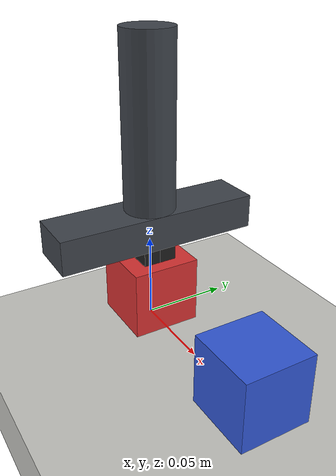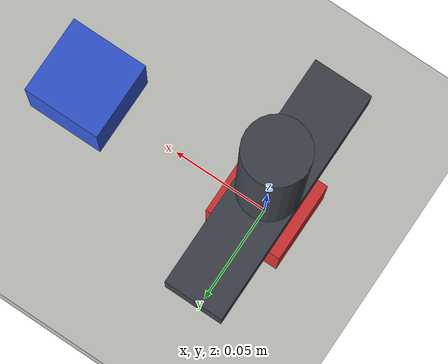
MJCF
<!-- Stack: place the red cube on top of the blue cube and let go. -->
<mujoco model="stack">
  <include file="common.xml"/>
  <worldbody>
    <body name="cube" pos="0 0 0.02">
      <freejoint name="cube"/>
      <geom name="cube" type="box" size="0.02 0.02 0.02" mass="0.08" rgba="0.85 0.2 0.2 1"/>
    </body>
    <body name="base_cube" pos="0.1 0 0.02">
      <freejoint name="base_cube"/>
      <geom name="base_cube" type="box" size="0.02 0.02 0.02" mass="0.08" rgba="0.2 0.35 0.85 1"/>
    </body>
  </worldbody>
</mujoco>

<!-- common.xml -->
<mujoco>
  <compiler angle="radian" autolimits="true"/>
  <option timestep="0.002" cone="elliptic" impratio="10" integrator="implicitfast"/>
  <size memory="8M"/>

  <visual>
    <global offwidth="640" offheight="480"/>
    <headlight ambient="0.35 0.35 0.35" diffuse="0.5 0.5 0.5" specular="0.1 0.1 0.1"/>
    <quality shadowsize="2048"/>
  </visual>

  <asset>
    <texture name="grid" type="2d" builtin="checker" rgb1="0.82 0.82 0.80" rgb2="0.74 0.74 0.72"
             width="256" height="256"/>
    <texture name="sky" type="skybox" builtin="gradient" rgb1="0.55 0.62 0.72" rgb2="0.12 0.14 0.18"
             width="256" height="256"/>
    <material name="table" texture="grid" texrepeat="6 6" reflectance="0.05"/>
    <material name="gripper" rgba="0.25 0.27 0.30 1"/>
    <material name="pad" rgba="0.12 0.12 0.12 1"/>
    <material name="goal" rgba="0.15 0.75 0.25 0.35"/>
  </asset>

  <default>
    <geom friction="1.0 0.005 0.0001" solref="0.01 1" solimp="0.95 0.99 0.001"/>
    <default class="visual">
      <geom contype="0" conaffinity="0" group="1"/>
    </default>
  </default>

  <worldbody>
    <light name="key" pos="0.4 -0.4 1.2" dir="-0.3 0.3 -1" diffuse="0.6 0.6 0.6" castshadow="true"/>
    <light name="fill" pos="-0.5 0.3 1.0" dir="0.4 -0.2 -1" diffuse="0.25 0.25 0.25" castshadow="false"/>
    <geom name="table" type="box" size="0.45 0.45 0.02" pos="0 0 -0.02" material="table"/>
    <camera name="front" pos="0.0 -0.62 0.5" xyaxes="1 0 0 0 0.587 0.81" fovy="42"/>
    <camera name="top" pos="0 0 1.1" xyaxes="1 0 0 0 1 0" fovy="45"/>

    <body name="ee" pos="0 0 0" gravcomp="1">
      <joint name="ee_x" type="slide" axis="1 0 0" range="-0.35 0.35" damping="40"/>
      <joint name="ee_y" type="slide" axis="0 1 0" range="-0.35 0.35" damping="40"/>
      <joint name="ee_z" type="slide" axis="0 0 1" range="0.0 0.45" damping="40"/>
      <inertial pos="0 0 0.06" mass="0.4" diaginertia="0.001 0.001 0.001"/>
      <geom name="palm" type="box" size="0.015 0.06 0.01" pos="0 0 0.06" material="gripper"/>
      <geom name="wrist" type="cylinder" size="0.015 0.05" pos="0 0 0.12" material="gripper"
            class="visual"/>
      <site name="grip" pos="0 0 0" size="0.006" rgba="1 0.3 0.1 0.6"/>
      <body name="finger_l" pos="0 0 0" gravcomp="1">
        <joint name="finger_l" type="slide" axis="0 1 0" range="0 0.045" damping="5"/>
        <inertial pos="0 0.005 0.02" mass="0.05" diaginertia="1e-5 1e-5 1e-5"/>
        <geom name="finger_l" type="box" size="0.012 0.005 0.04" pos="0 0.005 0.02"
              material="pad" friction="1.5 0.01 0.001"/>
      </body>
      <body name="finger_r" pos="0 0 0" gravcomp="1">
        <joint name="finger_r" type="slide" axis="0 -1 0" range="0 0.045" damping="5"/>
        <inertial pos="0 -0.005 0.02" mass="0.05" diaginertia="1e-5 1e-5 1e-5"/>
        <geom name="finger_r" type="box" size="0.012 0.005 0.04" pos="0 -0.005 0.02"
              material="pad" friction="1.5 0.01 0.001"/>
      </body>
    </body>
  </worldbody>

  <contact>
    <exclude body1="finger_l" body2="finger_r"/>
  </contact>

  <actuator>
    <position name="ee_x" joint="ee_x" kp="600" ctrlrange="-0.35 0.35" forcerange="-40 40"/>
    <position name="ee_y" joint="ee_y" kp="600" ctrlrange="-0.35 0.35" forcerange="-40 40"/>
    <position name="ee_z" joint="ee_z" kp="600" ctrlrange="0.0 0.45" forcerange="-40 40"/>
    <position name="finger_l" joint="finger_l" kp="300" ctrlrange="0 0.045" forcerange="-15 15"/>
    <position name="finger_r" joint="finger_r" kp="300" ctrlrange="0 0.045" forcerange="-15 15"/>
  </actuator>
</mujoco>
